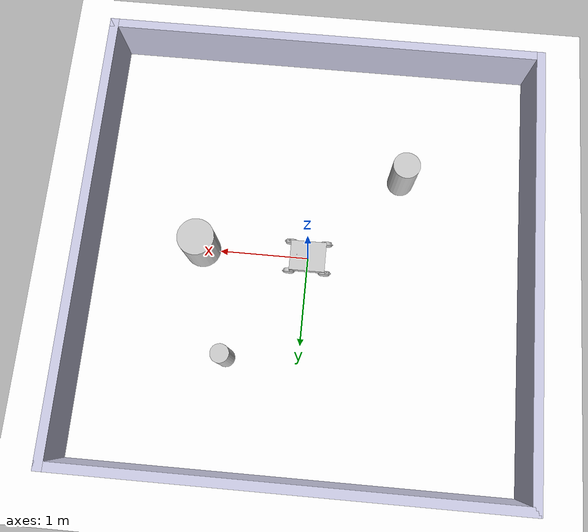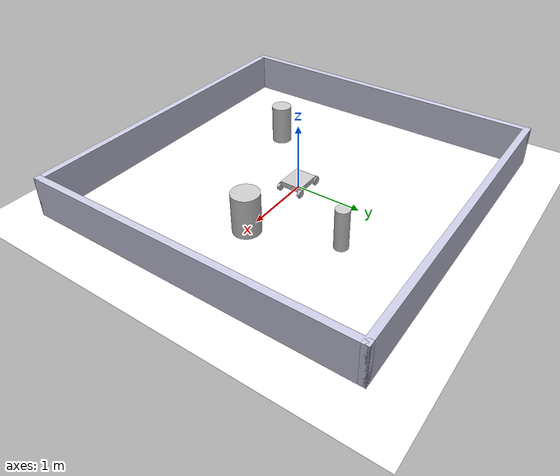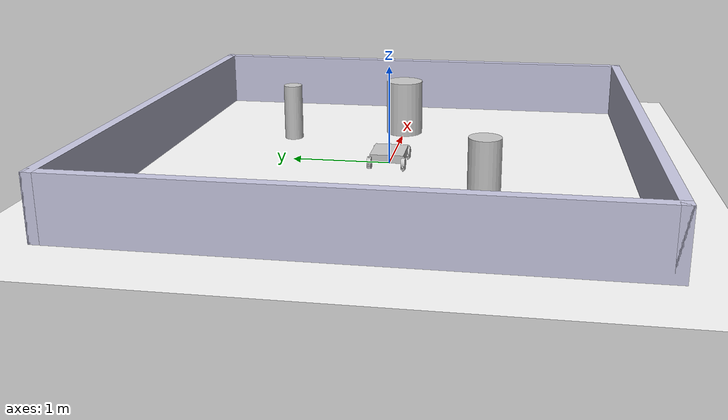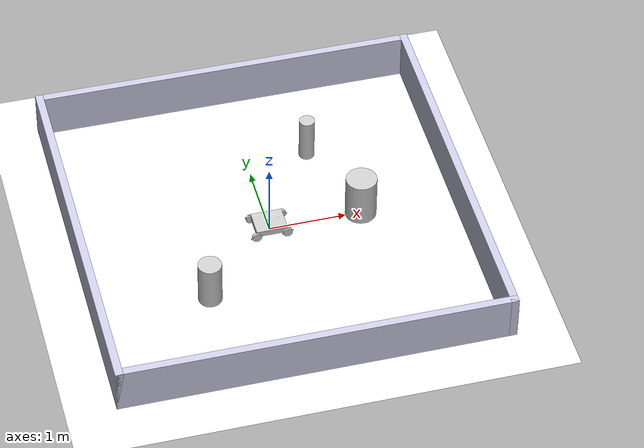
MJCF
<mujoco model="mecanum_lidar">
  <compiler angle="degree" coordinate="local" inertiafromgeom="true" settotalmass="5"/>
  <option timestep="0.002" gravity="0 0 -9.81" integrator="RK4" iterations="80" tolerance="1e-8"/>
  <size nconmax="4000" njmax="2000"/>

  <default>
    <joint limited="false" damping="0.2"/>
    <geom friction="1.2 0.02 0.005" rgba="0.8 0.8 0.8 1" contype="1" conaffinity="1"/>
    <motor ctrllimited="true" ctrlrange="-6 6" gear="1"/>
  </default>

  <asset>
    <texture type="skybox" builtin="gradient" rgb1="0.45 0.55 0.7" rgb2="0.1 0.15 0.2" width="512" height="512"/>
    <texture name="grid" type="2d" builtin="checker" rgb1="0.85 0.85 0.85" rgb2="0.65 0.65 0.65" width="512" height="512"/>
    <material name="floor" texture="grid" texrepeat="8 8" rgba="1 1 1 1" shininess="0.05"/>
    <material name="base" rgba="0.15 0.35 0.85 1"/>
    <material name="wheel" rgba="0.08 0.08 0.08 1"/>
    <material name="roller" rgba="0.15 0.15 0.15 1"/>
    <material name="ob_red" rgba="0.9 0.2 0.2 1"/>
    <material name="ob_green" rgba="0.2 0.8 0.3 1"/>
    <material name="ob_yellow" rgba="0.98 0.85 0.2 1"/>
  </asset>

  <worldbody>
    <!-- Floor -->
    <geom name="floor" type="plane" size="5 5 0.1" material="floor" rgba="1 1 1 1"/>

    <!-- Arena walls -->
    <body name="arena" pos="0 0 0">
      <geom name="wall_xp" type="box" size="0.05 2.5 0.30" pos="2.45 0 0.30" rgba="0.8 0.8 0.9 1"/>
      <geom name="wall_xn" type="box" size="0.05 2.5 0.30" pos="-2.45 0 0.30" rgba="0.8 0.8 0.9 1"/>
      <geom name="wall_yp" type="box" size="2.5 0.05 0.30" pos="0 2.45 0.30" rgba="0.8 0.8 0.9 1"/>
      <geom name="wall_yn" type="box" size="2.5 0.05 0.30" pos="0 -2.45 0.30" rgba="0.8 0.8 0.9 1"/>
    </body>

    <!-- Obstacles -->
    <body name="obstacles" pos="0 0 0">
      <geom name="obs1" type="cylinder" size="0.20 0.30" pos="1.2 0.0 0.30" material="ob_red"/>
      <geom name="obs2" type="cylinder" size="0.15 0.30" pos="-1.0 -1.0 0.30" material="ob_green"/>
      <geom name="obs3" type="cylinder" size="0.10 0.30" pos="0.8 1.2 0.30" material="ob_yellow"/>
    </body>

    <!-- Robot -->
    <body name="base" pos="0 0 0.105">
      <freejoint/>
      <geom name="base_geom" type="box" size="0.20 0.17 0.04" material="base"/>

      <!-- LIDAR ray sites (rangefinder shoots along site +Z, so we rotate it into XY with euler="0 90 yaw") -->
      <site name="lidar_000" pos="0.12 0 0.07" size="0.003" euler="0 90 0"/>
      <site name="lidar_030" pos="0.12 0 0.07" size="0.003" euler="0 90 30"/>
      <site name="lidar_060" pos="0.12 0 0.07" size="0.003" euler="0 90 60"/>
      <site name="lidar_090" pos="0.12 0 0.07" size="0.003" euler="0 90 90"/>
      <site name="lidar_120" pos="0.12 0 0.07" size="0.003" euler="0 90 120"/>
      <site name="lidar_150" pos="0.12 0 0.07" size="0.003" euler="0 90 150"/>
      <site name="lidar_180" pos="0.12 0 0.07" size="0.003" euler="0 90 180"/>
      <site name="lidar_210" pos="0.12 0 0.07" size="0.003" euler="0 90 210"/>
      <site name="lidar_240" pos="0.12 0 0.07" size="0.003" euler="0 90 240"/>
      <site name="lidar_270" pos="0.12 0 0.07" size="0.003" euler="0 90 270"/>
      <site name="lidar_300" pos="0.12 0 0.07" size="0.003" euler="0 90 300"/>
      <site name="lidar_330" pos="0.12 0 0.07" size="0.003" euler="0 90 330"/>

      <!-- Wheel geometry params:
           wheel radius=0.06, thickness=0.02 (visual only)
           mecanum rollers are collision geoms (capsules), angled +/-45 deg in XZ plane -->
      <!-- helper numbers embedded directly into fromto:
           r0=0.045 (roller center radius), h=0.028, d = (±1,0,1)/sqrt(2) => h/sqrt(2)=0.0198 -->

      <!-- Front-left (left wheels: +45 orientation) -->
      <body name="wheel_fl" pos="0.20 0.17 -0.043">
        <joint name="joint_fl" type="hinge" axis="0 1 0" damping="0.05"/>
        <geom name="wheel_fl_vis" type="cylinder" size="0.06 0.02" euler="-90 0 0" material="wheel"
              contype="0" conaffinity="0"/>
        <!-- 4 rollers -->
        <geom name="fl_r_front"  type="capsule" fromto="0.0252 0  0.0198   0.0648 0 -0.0198" size="0.010"
              material="roller" friction="1.6 0.001 0.0001"/>
        <geom name="fl_r_back"   type="capsule" fromto="-0.0648 0  0.0198  -0.0252 0 -0.0198" size="0.010"
              material="roller" friction="1.6 0.001 0.0001"/>
        <geom name="fl_r_top"    type="capsule" fromto="-0.0198 0  0.0648   0.0198 0  0.0252" size="0.010"
              material="roller" friction="1.6 0.001 0.0001"/>
        <geom name="fl_r_bottom" type="capsule" fromto="-0.0198 0 -0.0252   0.0198 0 -0.0648" size="0.010"
              material="roller" friction="1.6 0.001 0.0001"/>
      </body>

      <!-- Front-right (right wheels: mirrored -45 orientation) -->
      <body name="wheel_fr" pos="0.20 -0.17 -0.043">
        <joint name="joint_fr" type="hinge" axis="0 1 0" damping="0.05"/>
        <geom name="wheel_fr_vis" type="cylinder" size="0.06 0.02" euler="-90 0 0" material="wheel"
              contype="0" conaffinity="0"/>
        <geom name="fr_r_front"  type="capsule" fromto="0.0648 0  0.0198   0.0252 0 -0.0198" size="0.010"
              material="roller" friction="1.6 0.001 0.0001"/>
        <geom name="fr_r_back"   type="capsule" fromto="-0.0252 0  0.0198  -0.0648 0 -0.0198" size="0.010"
              material="roller" friction="1.6 0.001 0.0001"/>
        <geom name="fr_r_top"    type="capsule" fromto="0.0198 0  0.0648  -0.0198 0  0.0252" size="0.010"
              material="roller" friction="1.6 0.001 0.0001"/>
        <geom name="fr_r_bottom" type="capsule" fromto="0.0198 0 -0.0252  -0.0198 0 -0.0648" size="0.010"
              material="roller" friction="1.6 0.001 0.0001"/>
      </body>

      <!-- Rear-left (left wheels: +45 orientation) -->
      <body name="wheel_rl" pos="-0.20 0.17 -0.043">
        <joint name="joint_rl" type="hinge" axis="0 1 0" damping="0.05"/>
        <geom name="wheel_rl_vis" type="cylinder" size="0.06 0.02" euler="-90 0 0" material="wheel"
              contype="0" conaffinity="0"/>
        <geom name="rl_r_front"  type="capsule" fromto="0.0252 0  0.0198   0.0648 0 -0.0198" size="0.010"
              material="roller" friction="1.6 0.001 0.0001"/>
        <geom name="rl_r_back"   type="capsule" fromto="-0.0648 0  0.0198  -0.0252 0 -0.0198" size="0.010"
              material="roller" friction="1.6 0.001 0.0001"/>
        <geom name="rl_r_top"    type="capsule" fromto="-0.0198 0  0.0648   0.0198 0  0.0252" size="0.010"
              material="roller" friction="1.6 0.001 0.0001"/>
        <geom name="rl_r_bottom" type="capsule" fromto="-0.0198 0 -0.0252   0.0198 0 -0.0648" size="0.010"
              material="roller" friction="1.6 0.001 0.0001"/>
      </body>

      <!-- Rear-right (right wheels: mirrored -45 orientation) -->
      <body name="wheel_rr" pos="-0.20 -0.17 -0.043">
        <joint name="joint_rr" type="hinge" axis="0 1 0" damping="0.05"/>
        <geom name="wheel_rr_vis" type="cylinder" size="0.06 0.02" euler="-90 0 0" material="wheel"
              contype="0" conaffinity="0"/>
        <geom name="rr_r_front"  type="capsule" fromto="0.0648 0  0.0198   0.0252 0 -0.0198" size="0.010"
              material="roller" friction="1.6 0.001 0.0001"/>
        <geom name="rr_r_back"   type="capsule" fromto="-0.0252 0  0.0198  -0.0648 0 -0.0198" size="0.010"
              material="roller" friction="1.6 0.001 0.0001"/>
        <geom name="rr_r_top"    type="capsule" fromto="0.0198 0  0.0648  -0.0198 0  0.0252" size="0.010"
              material="roller" friction="1.6 0.001 0.0001"/>
        <geom name="rr_r_bottom" type="capsule" fromto="0.0198 0 -0.0252  -0.0198 0 -0.0648" size="0.010"
              material="roller" friction="1.6 0.001 0.0001"/>
      </body>

    </body>
  </worldbody>

  <!-- Avoid base <-> wheels contacts (otherwise rollers can hit the chassis and explode) -->
  <contact>
    <exclude body1="base" body2="wheel_fl"/>
    <exclude body1="base" body2="wheel_fr"/>
    <exclude body1="base" body2="wheel_rl"/>
    <exclude body1="base" body2="wheel_rr"/>
  </contact>

  <actuator>
    <motor name="motor_fl" joint="joint_fl"/>
    <motor name="motor_fr" joint="joint_fr"/>
    <motor name="motor_rl" joint="joint_rl"/>
    <motor name="motor_rr" joint="joint_rr"/>
  </actuator>

  <!-- 2D lidar via rangefinders -->
  <sensor>
    <rangefinder name="lidar_000" site="lidar_000"/>
    <rangefinder name="lidar_030" site="lidar_030"/>
    <rangefinder name="lidar_060" site="lidar_060"/>
    <rangefinder name="lidar_090" site="lidar_090"/>
    <rangefinder name="lidar_120" site="lidar_120"/>
    <rangefinder name="lidar_150" site="lidar_150"/>
    <rangefinder name="lidar_180" site="lidar_180"/>
    <rangefinder name="lidar_210" site="lidar_210"/>
    <rangefinder name="lidar_240" site="lidar_240"/>
    <rangefinder name="lidar_270" site="lidar_270"/>
    <rangefinder name="lidar_300" site="lidar_300"/>
    <rangefinder name="lidar_330" site="lidar_330"/>
  </sensor>
</mujoco>
